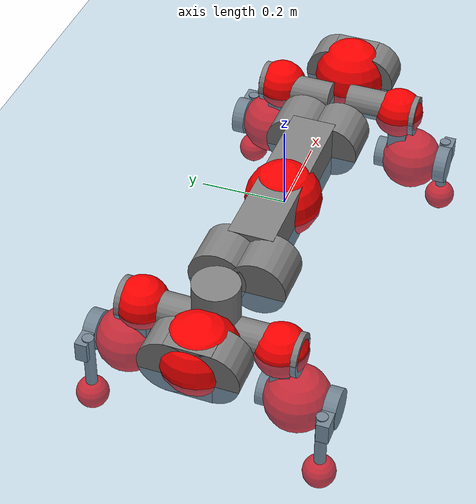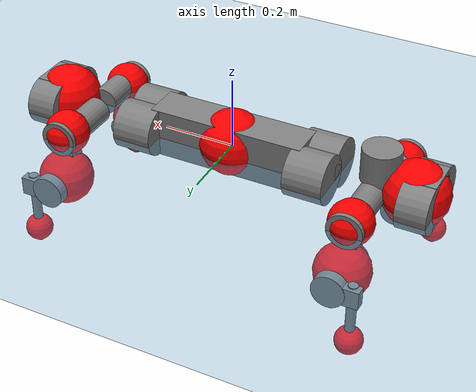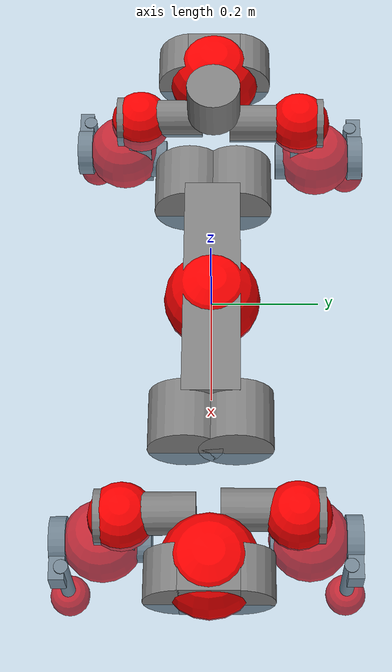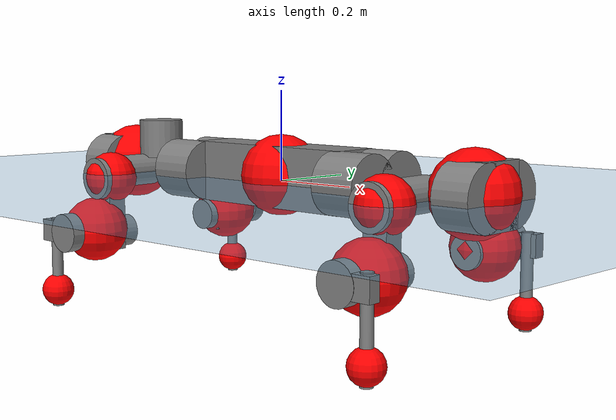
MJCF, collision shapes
<mujoco model="anymal_c">
  <compiler angle="radian" assetdir="assets" balanceinertia="true" inertiafromgeom="false"/>

  <option timestep="0.005" density="1.2" viscosity="2e-05"/>

  <size nkey="1"/>

  <visual>
    <quality shadowsize="8192"/>
    <map shadowclip="0.5"/>
  </visual>

  <default>
    <default class="/">
      <material specular="0" shininess="0.25"/>
      <geom contype="0" conaffinity="0" group="1" solref="-1000 -80"/>
      <site size="0.01 0.005 0.005" group="5"/>
      <general forcelimited="true" forcerange="-80 80" biastype="affine" gainprm="80" biasprm="0 -80 -2"/>
      <default class="anymal_c">
        <joint armature="0.01" damping="0.01" frictionloss="0.1"/>
        <default class="visual">
          <geom type="mesh" group="2"/>
          <default class="visual_zflip"/>
        </default>
        <default class="collision">
          <geom type="cylinder" group="3"/>
          <default class="foot">
            <geom size="0.03 0 0" type="sphere" condim="6" priority="1" friction="0.8 0.02 0.01" solimp="0.015 1 0.03"/>
          </default>
        </default>
      </default>
      <default class="reward_collision_sphere">
        <geom group="5" rgba="1 0 0 1"/>
      </default>
    </default>
  </default>

  <asset>
    <texture type="skybox" colorspace="auto" name="//unnamed_texture_0" builtin="gradient" rgb1="0.95 0.95 0.95" rgb2="0.95 0.95 0.95" width="100" height="600"/>
    <texture type="2d" colorspace="auto" name="texplane" builtin="checker" rgb1="0.345 0.575 0.748" rgb2="0.345 0.575 0.748" markrgb="1 1 1" width="512" height="512"/>
    <texture type="2d" colorspace="linear" name="base" file="base.png"/>
    <texture type="2d" colorspace="linear" name="top_shell" file="top_shell.png"/>
    <texture type="2d" colorspace="linear" name="bottom_shell" file="bottom_shell.png"/>
    <texture type="2d" colorspace="linear" name="remote" file="remote.png"/>
    <texture type="2d" colorspace="linear" name="hatch" file="hatch.png"/>
    <texture type="2d" colorspace="linear" name="handle" file="handle.png"/>
    <texture type="2d" colorspace="linear" name="face" file="face.png"/>
    <texture type="2d" colorspace="linear" name="battery" file="battery.png"/>
    <texture type="2d" colorspace="linear" name="lidar_cage" file="lidar_cage.png"/>
    <texture type="2d" colorspace="linear" name="depth_camera" file="depth_camera.png"/>
    <texture type="2d" colorspace="linear" name="wide_angle_camera" file="wide_angle_camera.png"/>
    <texture type="2d" colorspace="linear" name="lidar" file="lidar.png"/>
    <texture type="2d" colorspace="linear" name="drive" file="drive.png"/>
    <texture type="2d" colorspace="linear" name="hip_l" file="hip_l.png"/>
    <texture type="2d" colorspace="linear" name="shank_l" file="shank_l.png"/>
    <texture type="2d" colorspace="linear" name="foot" file="foot.png"/>
    <texture type="2d" colorspace="linear" name="thigh" file="thigh.png"/>
    <texture type="2d" colorspace="linear" name="shank_r" file="shank_r.png"/>
    <texture type="2d" colorspace="linear" name="hip_r" file="hip_r.png"/>
    <material name="MatPlane" class="/" texture="texplane" texuniform="true" texrepeat="2 2" specular="0.9" shininess="0.5"/>
    <material name="black_plastic" class="/" rgba="0.007 0.007 0.007 1"/>
    <material name="green" class="/" rgba="0.052 0.178 0.033 1"/>
    <material name="red" class="/" rgba="0.178 0.006 0.005 1"/>
    <material name="yellow" class="/" rgba="0.178 0.119 0.006 1"/>
    <material name="lwl" class="/" rgba="0.8 0.8 0.8 1"/>
    <material name="base" class="/" texture="base"/>
    <material name="top_shell" class="/" texture="top_shell"/>
    <material name="bottom_shell" class="/" texture="bottom_shell"/>
    <material name="hip_l" class="/" texture="hip_l"/>
    <material name="thigh" class="/" texture="thigh"/>
    <material name="shank_l" class="/" texture="shank_l"/>
    <material name="foot" class="/" texture="foot"/>
    <material name="hip_r" class="/" texture="hip_r"/>
    <material name="shank" class="/" texture="shank_r"/>
    <material name="hatch" class="/" texture="hatch"/>
    <material name="remote" class="/" texture="remote"/>
    <material name="handle" class="/" texture="handle"/>
    <material name="face" class="/" texture="face"/>
    <material name="depth_camera" class="/" texture="depth_camera"/>
    <material name="wide_angle_camera" class="/" texture="wide_angle_camera"/>
    <material name="battery" class="/" texture="battery"/>
    <material name="lidar_cage" class="/" texture="lidar_cage"/>
    <material name="lidar" class="/" texture="lidar"/>
    <material name="drive" class="/" texture="drive"/>
    <mesh name="base_0" class="/" file="base_0.obj"/>
    <mesh name="base_1" class="/" file="base_1.obj"/>
    <mesh name="base_2" class="/" file="base_2.obj"/>
    <mesh name="base_3" class="/" file="base_3.obj"/>
    <mesh name="base_4" class="/" file="base_4.obj"/>
    <mesh name="base_5" class="/" file="base_5.obj"/>
    <mesh name="top_shell" class="/" file="top_shell.obj"/>
    <mesh name="bottom_shell" class="/" file="bottom_shell.obj"/>
    <mesh name="remote" class="/" file="remote.obj"/>
    <mesh name="handle" class="/" file="handle.obj"/>
    <mesh name="face" class="/" file="face.obj"/>
    <mesh name="wide_angle_camera" class="/" file="wide_angle_camera.obj"/>
    <mesh name="depth_camera" class="/" file="depth_camera.obj"/>
    <mesh name="battery" class="/" file="battery.obj"/>
    <mesh name="lidar_cage" class="/" file="lidar_cage.obj"/>
    <mesh name="lidar" class="/" file="lidar.obj"/>
    <mesh name="drive" class="/" file="drive.obj"/>
    <mesh name="hip_l" class="/" file="hip_l.obj"/>
    <mesh name="thigh" class="/" file="thigh.obj"/>
    <mesh name="shank_l" class="/" file="shank_l.obj"/>
    <mesh name="foot" class="/" file="foot.obj"/>
    <mesh name="hip_r" class="/" file="hip_r.obj"/>
    <mesh name="hatch" class="/" file="hatch.obj"/>
    <mesh name="shank_r" class="/" file="shank_r.obj"/>
  </asset>

  <worldbody>
    <geom name="floor" class="/" size="100 100 0.125" type="plane" group="0" material="MatPlane"/>
    <light name="toplight_shadow" class="/" pos="0 0 5" dir="0.0990148 0.0990148 -0.990148" type="directional" ambient="0.04 0.04 0.04" diffuse="0.55 0.55 0.55" specular="0.12 0.12 0.12"/>
    <light name="toplight_fill" class="/" pos="0 0 5" dir="0.0990148 0.0990148 -0.990148" type="directional" castshadow="false" ambient="0.04 0.04 0.04" diffuse="0.3 0.3 0.3" specular="0.08 0.08 0.08"/>
    <body name="trunk" childclass="anymal_c" pos="-0.00140821 0.00123206 0.0136749" quat="0.99998 0.00502874 0.00201751 -0.00326911">
      <inertial pos="0.00216999 -0.0108346 0.0234009" quat="0.462617 0.483913 0.545773 0.50393" mass="7.53634" diaginertia="1.071 0.0599282 0.00379107"/>
      <joint name="//unnamed_joint_0" type="free" armature="0" damping="0" frictionloss="0"/>
      <geom name="//unnamed_geom_1" class="visual" material="green" mesh="base_0"/>
      <geom name="//unnamed_geom_2" class="visual" material="yellow" mesh="base_1"/>
      <geom name="//unnamed_geom_3" class="visual" material="red" mesh="base_2"/>
      <geom name="//unnamed_geom_4" class="visual" material="black_plastic" mesh="base_3"/>
      <geom name="//unnamed_geom_5" class="visual" material="lwl" mesh="base_4"/>
      <geom name="//unnamed_geom_6" class="visual" material="base" mesh="base_5"/>
      <geom name="trunk_1" class="collision" size="0.218424 0.0527229 0.0677866" type="box"/>
      <geom name="trunk_2" class="collision" size="0.0677866 0.0546059" pos="0.250116 0.0452831 0" quat="0.707107 0 0.707107 0"/>
      <geom name="trunk_3" class="collision" size="0.0677866 0.0546059" pos="-0.250116 0.0452831 0" quat="0.707107 0 0.707107 0"/>
      <geom name="trunk_4" class="collision" size="0.0677866 0.0546059" pos="0.250116 -0.0452831 0" quat="0.707107 0 0.707107 0"/>
      <geom name="trunk_5" class="collision" size="0.0677866 0.0546059" pos="-0.250116 -0.0452831 0" quat="0.707107 0 0.707107 0"/>
      <geom name="//unnamed_geom_12" class="visual" material="top_shell" mesh="top_shell"/>
      <geom name="//unnamed_geom_13" class="visual" material="bottom_shell" mesh="bottom_shell"/>
      <geom name="//unnamed_geom_14" class="visual" material="remote" mesh="remote"/>
      <geom name="//unnamed_geom_15" class="visual" material="handle" mesh="handle"/>
      <geom name="//unnamed_geom_16" class="visual" pos="0.476658 0 0" quat="1 0 0 0" material="face" mesh="face"/>
      <geom name="trunk_6" class="collision" size="0.0414252 0.0527229 0.0677866" pos="0.539906 0 0" type="box"/>
      <geom name="//unnamed_geom_18" class="collision" size="0.0677866 0.0414252" pos="0.539906 0.0452831 0" quat="0.707107 0 0.707107 0"/>
      <geom name="//unnamed_geom_19" class="collision" size="0.0677866 0.0414252" pos="0.539906 -0.0452831 0" quat="0.707107 0 0.707107 0"/>
      <geom name="//unnamed_geom_20" class="visual" pos="0.530851 0 -0.00828739" quat="0.965926 0 0.258819 0" material="depth_camera" mesh="depth_camera"/>
      <geom name="//unnamed_geom_21" class="visual" pos="0.58993 0 0.00692651" material="wide_angle_camera" mesh="wide_angle_camera"/>
      <geom name="//unnamed_geom_22" class="visual_zflip" pos="-0.476658 0 0" quat="0 0 0 1" material="face" mesh="face"/>
      <geom name="trunk_7" class="collision" size="0.0414252 0.0527229 0.0677866" pos="-0.539906 0 0" quat="0 0 0 1" type="box"/>
      <geom name="//unnamed_geom_24" class="collision" size="0.0677866 0.0414252" pos="-0.539906 -0.0452831 0" quat="0 -0.707107 0 0.707107"/>
      <geom name="//unnamed_geom_25" class="collision" size="0.0677866 0.0414252" pos="-0.539906 0.0452831 0" quat="0 -0.707107 0 0.707107"/>
      <geom name="//unnamed_geom_26" class="visual" pos="-0.530851 0 -0.00828739" quat="0 -0.258819 0 0.965926" material="depth_camera" mesh="depth_camera"/>
      <geom name="//unnamed_geom_27" class="visual_zflip" pos="-0.58993 0 0.00692651" quat="0 0 0 1" material="wide_angle_camera" mesh="wide_angle_camera"/>
      <geom name="//unnamed_geom_28" class="visual" material="battery" mesh="battery"/>
      <geom name="//unnamed_geom_29" class="visual" pos="0 0.0428324 0.0186645" quat="0.683013 -0.183013 0.183013 0.683013" material="depth_camera" mesh="depth_camera"/>
      <geom name="//unnamed_geom_30" class="visual" pos="0 -0.0428324 0.0186645" quat="0.683013 0.183013 0.183013 -0.683013" material="depth_camera" mesh="depth_camera"/>
      <geom name="//unnamed_geom_31" class="visual" pos="-0.418585 0 0.0340079" quat="1 0 0 0" material="lidar_cage" mesh="lidar_cage"/>
      <geom name="trunk_8" class="collision" size="0.0527229 0.0451911" pos="-0.418585 0 0.0617695"/>
      <geom name="//unnamed_geom_33" class="visual" pos="-0.418585 -0.000197638 0.0657949" quat="0.707107 0 0 -0.707107" material="lidar" mesh="lidar"/>
      <geom name="//unnamed_geom_34" class="visual" pos="0.344873 0.0672123 3.17762e-09" quat="0.258819 0.965926 0 0" material="drive" mesh="drive"/>
      <geom name="//unnamed_geom_35" class="visual" pos="0.344873 -0.0672123 -3.17762e-09" quat="0.258819 -0.965926 0 0" material="drive" mesh="drive"/>
      <geom name="//unnamed_geom_36" class="visual" pos="-0.344873 0.0672123 -3.17762e-09" quat="0 0 0.965926 -0.258819" material="drive" mesh="drive"/>
      <geom name="//unnamed_geom_37" class="visual" pos="-0.344873 -0.0672123 3.17762e-09" quat="0 0 -0.965926 -0.258819" material="drive" mesh="drive"/>
      <geom name="//unnamed_geom_38" class="visual" pos="0.133395 0 0.0337766" quat="1 0 0 0" material="hatch" mesh="hatch"/>
      <geom name="//unnamed_geom_39" class="reward_collision_sphere" size="0.0903822"/>
      <geom name="//unnamed_geom_40" class="reward_collision_sphere" size="0.0903822" pos="0.517482 0 0"/>
      <geom name="//unnamed_geom_41" class="reward_collision_sphere" size="0.0903822" pos="-0.517482 0 0"/>
      <site name="imu" pos="0.273634 -0.033333 0.0726471" size="0.00753185"/>
      <camera name="track" pos="0 -1.2938 0" quat="0.707107 0.707107 0 0" mode="trackcom"/>
      <camera name="ego_camera" pos="0.517482 0 -0.0185077" quat="-0.5 -0.5 0.5 0.5"/>
      <body name="LF_HIP" pos="0.344391 0.0626058 -0.00579218" quat="0.258816 0.965927 -7.72696e-06 -6.74751e-06">
        <inertial pos="0.0772794 -0.00809308 0.00937694" quat="-0.105783 0.666354 -0.136546 0.725353" mass="1.28535" diaginertia="0.011342 0.000640256 7.62796e-05"/>
        <joint name="LF_HAA" pos="0 0 0" axis="0.998359 -0.0572253 -0.00215089" stiffness="0.0474972" range="-0.742942 0.346586" armature="0.00756105" damping="0.0556035" frictionloss="0.0486252"/>
        <geom name="//unnamed_geom_42" class="visual" pos="0 0.000186925 -3.07023e-05" quat="0.258819 -0.965926 0 0" material="hip_l" mesh="hip_l"/>
        <geom name="//unnamed_geom_43" class="visual" pos="0.0688826 -0.076777 -0.0429647" quat="0.183013 -0.683013 0.683013 0.183013" material="drive" mesh="drive"/>
        <geom name="//unnamed_geom_44" class="collision" size="0.0376592 0.0527229" pos="0.0688826 -0.00773681 -0.00319489" quat="-0.353553 -0.612372 0.612372 -0.353553"/>
        <body name="LF_THIGH" pos="0.0794564 -0.0533555 -0.0303292" quat="0.182734 -0.682705 0.683361 0.183137">
          <inertial pos="0.0356627 0.00137497 -0.113538" quat="0.994038 -0.00615043 -0.0882391 0.0637466" mass="1.44288" diaginertia="0.0672506 0.00385655 0.000115033"/>
          <joint name="LF_HFE" pos="0 0 0" axis="0.999998 0.000219395 0.00196836" stiffness="0.0240446" range="-2.99253 3.13097" armature="0.0106394" damping="0" frictionloss="0.0769053"/>
          <geom name="//unnamed_geom_45" class="visual" pos="0.0100089 1.57717e-05 0" quat="0.707107 0 0 -0.707107" material="thigh" mesh="thigh"/>
          <geom name="//unnamed_geom_46" class="collision" size="0.048957 0.0301274" pos="0.0459984 0 0" quat="0.5 0.5 -0.5 -0.5"/>
          <geom name="//unnamed_geom_47" class="collision" size="0.0282444 0.0225955 0.106436" pos="0.0344988 0 -0.0653849" quat="0.707107 0 0 -0.707107" type="box"/>
          <geom name="//unnamed_geom_48" class="visual" pos="0.115341 0 -0.131867" quat="1 0 0 0" material="drive" mesh="drive"/>
          <geom name="//unnamed_geom_49" class="collision" size="0.0376592 0.0527229" pos="0.0348438 0 -0.131867" quat="0.707107 0 0.707107 0"/>
          <geom name="//unnamed_geom_50" class="reward_collision_sphere" size="0.0602548" pos="0.028749 0 0"/>
          <body name="LF_SHANK" pos="0.111826 0.00126056 -0.12788" quat="1 0.000330056 8.38485e-05 0.000365216">
            <inertial pos="0.0211154 -0.026631 -0.0358576" quat="0.992918 -0.116047 -0.000626097 -0.0254285" mass="0.253833" diaginertia="0.0235042 0.00103031 2.32746e-05"/>
            <joint name="LF_KFE" pos="0 0 0" axis="0.999999 0.000134917 0.00168971" stiffness="0.00392313" range="-2.84847 2.98522" armature="0.00934806" damping="0.0230274" frictionloss="0.0223219"/>
            <geom name="//unnamed_geom_51" class="visual" pos="0.00326368 0.0174021 0" quat="0.707107 0 0 -0.707107" material="shank_l" mesh="shank_l"/>
            <geom name="LF_kfe_act" class="collision" size="0.0451911 0.0150637" pos="0.0229992 0 0" quat="0.5 0.5 -0.5 -0.5"/>
            <geom name="//unnamed_geom_53" class="collision" size="0.0433074 0.02542 0.0143105" pos="0.0229992 -0.0371962 0" quat="0.5 0.5 -0.5 -0.5" type="box"/>
            <geom name="//unnamed_geom_54" class="visual" pos="0.0150062 -0.051287 -0.156376" quat="0.382683 0 0 -0.92388" material="foot" mesh="foot"/>
            <geom name="LF_calf" class="collision" size="0.0131807 0.106389" pos="0.015007 -0.056895 -0.0781881" quat="0.707107 0 0 -0.707107"/>
            <geom name="LF_foot" class="foot" size="0.0295447" pos="0.015007 -0.056895 -0.145966" quat="0.707107 0 0 -0.707107"/>
            <geom name="//unnamed_geom_57" class="reward_collision_sphere" size="0.0753185" pos="-0.057498 0 0"/>
            <geom name="//unnamed_geom_58" class="reward_collision_sphere" size="0.0376592" pos="0.015007 -0.056895 -0.145966"/>
            <site name="LF_foot" class="foot" pos="0.015007 -0.056895 -0.145966" quat="0.707107 0 0 -0.707107" size="0.00753185"/>
          </body>
        </body>
      </body>
      <body name="RF_HIP" pos="0.352332 -0.0697799 -0.00366923" quat="0.259051 -0.965838 -0.00488476 0.00504716">
        <inertial pos="0.070662 0.0110546 -0.00614852" quat="0.185545 0.646065 0.10217 0.733304" mass="1.03421" diaginertia="0.0120605 0.000581912 7.19905e-05"/>
        <joint name="RF_HAA" pos="0 0 0" axis="0.999337 0.0175684 -0.031881" stiffness="0.0546686" range="-0.218954 0.862107" armature="0.00639531" damping="0.049792" frictionloss="0.043245"/>
        <geom name="//unnamed_geom_59" class="visual" pos="0 -0.000186924 -3.07022e-05" quat="0.258819 0.965926 0 0" material="hip_r" mesh="hip_r"/>
        <geom name="//unnamed_geom_60" class="visual" pos="0.0688826 0.076777 -0.0429647" quat="0.183013 0.683013 0.683013 -0.183013" material="drive" mesh="drive"/>
        <geom name="//unnamed_geom_61" class="collision" size="0.0376592 0.0527229" pos="0.0688826 0.00773681 -0.00319489" quat="-0.353553 0.612372 0.612372 0.353553"/>
        <body name="RF_THIGH" pos="0.0698914 0.0547058 -0.0188858" quat="0.182421 0.685163 0.680981 -0.183138">
          <inertial pos="0.0419362 0.000827238 -0.109181" quat="0.992766 -0.012125 -0.0927389 0.0752927" mass="1.13227" diaginertia="0.0602745 0.00378842 8.10497e-05"/>
          <joint name="RF_HFE" pos="0 0 0" axis="0.999999 -0.000996901 8.52915e-05" range="-3.11263 3.29193" armature="0.010108" damping="0.0766448" frictionloss="0.114404"/>
          <geom name="//unnamed_geom_62" class="visual" pos="0.0100089 1.57717e-05 0" quat="0.707107 0 0 -0.707107" material="thigh" mesh="thigh"/>
          <geom name="//unnamed_geom_63" class="collision" size="0.048957 0.0301274" pos="0.0459984 0 0" quat="0.5 0.5 0.5 0.5"/>
          <geom name="//unnamed_geom_64" class="collision" size="0.0282444 0.0225955 0.106436" pos="0.0344988 0 -0.0653849" quat="0.707107 0 0 0.707107" type="box"/>
          <geom name="//unnamed_geom_65" class="visual" pos="0.115341 0 -0.131867" quat="1 0 0 0" material="drive" mesh="drive"/>
          <geom name="//unnamed_geom_66" class="collision" size="0.0376592 0.0527229" pos="0.0348438 0 -0.131867" quat="0.707107 0 0.707107 0"/>
          <geom name="//unnamed_geom_67" class="reward_collision_sphere" size="0.0602548" pos="0.028749 0 0"/>
          <body name="RF_SHANK" pos="0.128768 -0.00220755 -0.130596" quat="0.999999 0.00101686 0.000540866 -0.000805275">
            <inertial pos="0.00985037 0.0519462 -0.0477566" quat="0.983839 0.178385 -0.0140382 -0.00650068" mass="0.297686" diaginertia="0.0236805 0.00103282 3.0291e-05"/>
            <joint name="RF_KFE" pos="0 0 0" axis="0.999982 -0.00533357 -0.00271893" stiffness="0.0141731" range="-3.13848 3.16759" armature="0.0076174" damping="0.0510432" frictionloss="0.1003"/>
            <geom name="//unnamed_geom_68" class="visual" pos="0.00326366 -0.0174021 0" quat="0.707107 0 0 0.707107" material="shank" mesh="shank_r"/>
            <geom name="RF_kfe_act" class="collision" size="0.0451911 0.0150637" pos="0.0229992 0 0" quat="0.5 0.5 0.5 0.5"/>
            <geom name="//unnamed_geom_70" class="collision" size="0.0433074 0.02542 0.0143105" pos="0.0229992 0.0371962 0" quat="0.5 0.5 0.5 0.5" type="box"/>
            <geom name="//unnamed_geom_71" class="visual" pos="0.0150078 0.051287 -0.156376" quat="0.382683 0 0 0.92388" material="foot" mesh="foot"/>
            <geom name="RF_calf" class="collision" size="0.0131807 0.106389" pos="0.015007 0.056895 -0.0781881" quat="0.707107 0 0 0.707107"/>
            <geom name="RF_foot" class="foot" size="0.0327802" pos="0.015007 0.056895 -0.145966" quat="0.707107 0 0 0.707107"/>
            <geom name="//unnamed_geom_74" class="reward_collision_sphere" size="0.0753185" pos="-0.057498 0 0"/>
            <geom name="//unnamed_geom_75" class="reward_collision_sphere" size="0.0376592" pos="0.015007 0.056895 -0.145966"/>
            <site name="RF_foot" class="foot" pos="0.015007 0.056895 -0.145966" quat="0.707107 0 0 0.707107" size="0.00753185"/>
          </body>
        </body>
      </body>
      <body name="LH_HIP" pos="-0.344985 0.0762517 -0.00923734" quat="0.00202261 0.000719598 0.965974 -0.258632">
        <inertial pos="0.0695291 0.0220234 0.00991066" quat="0.134934 0.662042 0.117026 0.727872" mass="1.32018" diaginertia="0.0139729 0.000569019 8.61491e-05"/>
        <joint name="LH_HAA" pos="0 0 0" axis="0.998355 -0.0262795 -0.0509491" range="-0.258375 0.471569" armature="0.00323143" damping="0.0170598" frictionloss="0.070607"/>
        <geom name="//unnamed_geom_76" class="visual" pos="0 -0.000186924 -3.07022e-05" quat="-0.258819 -0.965926 0 0" material="hip_r" mesh="hip_r"/>
        <geom name="//unnamed_geom_77" class="visual" pos="0.0688826 0.076777 -0.0429647" quat="0.183013 0.683013 0.683013 -0.183013" material="drive" mesh="drive"/>
        <geom name="//unnamed_geom_78" class="collision" size="0.0376592 0.0527229" pos="0.0688826 0.00773681 -0.00319489" quat="-0.353553 0.612372 0.612372 0.353553"/>
        <body name="LH_THIGH" pos="0.0688544 0.0583895 -0.0326985" quat="0.185057 0.680692 0.683815 -0.186571">
          <inertial pos="0.0209934 0.00961695 -0.0993997" quat="0.992987 -0.00423964 -0.0795028 0.087394" mass="1.06666" diaginertia="0.0416376 0.00269578 6.4033e-05"/>
          <joint name="LH_HFE" pos="0 0 0" axis="0.997441 0.0697819 0.0155225" range="-2.97107 3.13874" armature="0.00696355" damping="0.0778919" frictionloss="0.0520901"/>
          <geom name="//unnamed_geom_79" class="visual" pos="0.0100089 1.57717e-05 0" quat="0.707107 0 0 -0.707107" material="thigh" mesh="thigh"/>
          <geom name="//unnamed_geom_80" class="collision" size="0.048957 0.0301274" pos="0.0459984 0 0" quat="0.5 0.5 -0.5 -0.5"/>
          <geom name="//unnamed_geom_81" class="collision" size="0.0282444 0.0225955 0.106436" pos="0.0344988 0 -0.0653849" quat="0.707107 0 0 -0.707107" type="box"/>
          <geom name="//unnamed_geom_82" class="visual" pos="0.115341 0 -0.131867" quat="1 0 0 0" material="drive" mesh="drive"/>
          <geom name="//unnamed_geom_83" class="collision" size="0.0376592 0.0527229" pos="0.0348438 0 -0.131867" quat="0.707107 0 0.707107 0"/>
          <geom name="//unnamed_geom_84" class="reward_collision_sphere" size="0.0602548" pos="0.028749 0 0"/>
          <body name="LH_SHANK" pos="0.123296 0.00121702 -0.123652" quat="0.999987 0.000860142 -0.00385022 0.00330151">
            <inertial pos="0.0196014 0.0305186 -0.0233871" quat="0.991206 0.102018 -0.0180753 0.0823155" mass="0.280861" diaginertia="0.0231566 0.00126986 2.45706e-05"/>
            <joint name="LH_KFE" pos="0 0 0" axis="1 -0.000193387 0.000102429" stiffness="0.0102348" range="-3.18307 3.43584" armature="0.00315821" damping="0.0733398" frictionloss="0.0704783"/>
            <geom name="//unnamed_geom_85" class="visual" pos="0.00326366 -0.0174021 0" quat="-0.707107 0 0 -0.707107" material="shank" mesh="shank_r"/>
            <geom name="LH_kfe_act" class="collision" size="0.0451911 0.0150637" pos="0.0229992 0 0" quat="0.5 0.5 -0.5 -0.5"/>
            <geom name="//unnamed_geom_87" class="collision" size="0.0433074 0.02542 0.0143105" pos="0.0229992 0.0371962 0" quat="0.5 0.5 -0.5 -0.5" type="box"/>
            <geom name="//unnamed_geom_88" class="visual" pos="0.0150078 0.051287 -0.156376" quat="-0.382683 0 0 -0.92388" material="foot" mesh="foot"/>
            <geom name="LH_calf" class="collision" size="0.0131807 0.106389" pos="0.015007 0.056895 -0.0781881" quat="0.707107 0 0 -0.707107"/>
            <geom name="LH_foot" class="foot" size="0.0182021" pos="0.015007 0.056895 -0.145966" quat="0.707107 0 0 -0.707107"/>
            <geom name="//unnamed_geom_91" class="reward_collision_sphere" size="0.0753185" pos="-0.057498 0 0"/>
            <geom name="//unnamed_geom_92" class="reward_collision_sphere" size="0.0376592" pos="0.015007 0.056895 -0.145966"/>
            <site name="LH_foot" class="foot" pos="0.015007 0.056895 -0.145966" quat="0.707107 0 0 -0.707107" size="0.00753185"/>
          </body>
        </body>
      </body>
      <body name="RH_HIP" pos="-0.359508 -0.0677511 -0.0119784" quat="0.00084077 0.00137383 -0.965964 -0.25867">
        <inertial pos="0.0757956 -0.00194507 -0.00475848" quat="-0.0865537 0.690375 -0.173111 0.697082" mass="1.16859" diaginertia="0.00818263 0.000465859 5.26968e-05"/>
        <joint name="RH_HAA" pos="0 0 0" axis="0.997274 -0.0515323 -0.0528074" range="-0.593923 0.489951" armature="0.0074394" damping="0.0235311" frictionloss="0.0205438"/>
        <geom name="//unnamed_geom_93" class="visual" pos="0 0.000186925 -3.07023e-05" quat="-0.258819 0.965926 0 0" material="hip_l" mesh="hip_l"/>
        <geom name="//unnamed_geom_94" class="visual" pos="0.0688826 -0.076777 -0.0429647" quat="-0.183013 0.683013 -0.683013 -0.183013" material="drive" mesh="drive"/>
        <geom name="//unnamed_geom_95" class="collision" size="0.0376592 0.0527229" pos="0.0688826 -0.00773681 -0.00319489" quat="0.353553 0.612372 -0.612372 0.353553"/>
        <body name="RH_THIGH" pos="0.0702034 -0.0510954 -0.0136988" quat="-0.1825 0.683284 -0.682808 -0.183274">
          <inertial pos="0.0296633 0.00715785 -0.101708" quat="0.987795 -0.00279958 -0.121819 0.0970251" mass="1.62879" diaginertia="0.0549467 0.00352032 8.97858e-05"/>
          <joint name="RH_HFE" pos="0 0 0" axis="0.999555 -0.0245765 -0.0168971" range="-3.11506 3.34302" armature="0.00838763" damping="0.0278581" frictionloss="0.0889639"/>
          <geom name="//unnamed_geom_96" class="visual" pos="0.0100089 1.57717e-05 0" quat="0.707107 0 0 -0.707107" material="thigh" mesh="thigh"/>
          <geom name="//unnamed_geom_97" class="collision" size="0.048957 0.0301274" pos="0.0459984 0 0" quat="0.5 0.5 0.5 0.5"/>
          <geom name="//unnamed_geom_98" class="collision" size="0.0282444 0.0225955 0.106436" pos="0.0344988 0 -0.0653849" quat="0.707107 0 0 0.707107" type="box"/>
          <geom name="//unnamed_geom_99" class="visual" pos="0.115341 0 -0.131867" quat="1 0 0 0" material="drive" mesh="drive"/>
          <geom name="//unnamed_geom_100" class="collision" size="0.0376592 0.0527229" pos="0.0348438 0 -0.131867" quat="0.707107 0 0.707107 0"/>
          <geom name="//unnamed_geom_101" class="reward_collision_sphere" size="0.0602548" pos="0.028749 0 0"/>
          <body name="RH_SHANK" pos="0.128108 -0.009976 -0.122242" quat="0.999973 -0.0073797 0.000727351 -3.39088e-05">
            <inertial pos="0.00184567 -0.0394478 -0.0367822" quat="0.997688 -0.065917 -0.0144491 0.00805971" mass="0.233405" diaginertia="0.018855 0.000858269 2.47489e-05"/>
            <joint name="RH_KFE" pos="0 0 0" axis="0.9975 -0.0518788 0.047977" stiffness="0.0636607" range="-3.37102 3.20909" armature="0.00793286" damping="0.067143" frictionloss="0.089512"/>
            <geom name="//unnamed_geom_102" class="visual" pos="0.00326368 0.0174021 0" quat="0.707107 0 0 -0.707107" material="shank_l" mesh="shank_l"/>
            <geom name="RH_kfe_act" class="collision" size="0.0451911 0.0150637" pos="0.0229992 0 0" quat="0.5 0.5 0.5 0.5"/>
            <geom name="//unnamed_geom_104" class="collision" size="0.0433074 0.02542 0.0143105" pos="0.0229992 -0.0371962 0" quat="0.5 0.5 0.5 0.5" type="box"/>
            <geom name="//unnamed_geom_105" class="visual" pos="0.0150062 -0.051287 -0.156376" quat="0.382683 0 0 -0.92388" material="foot" mesh="foot"/>
            <geom name="RH_calf" class="collision" size="0.0131807 0.106389" pos="0.015007 -0.056895 -0.0781881" quat="0.707107 0 0 0.707107"/>
            <geom name="RH_foot" class="foot" size="0.0257214" pos="0.015007 -0.056895 -0.145966" quat="0.707107 0 0 0.707107"/>
            <geom name="//unnamed_geom_108" class="reward_collision_sphere" size="0.0753185" pos="-0.057498 0 0"/>
            <geom name="//unnamed_geom_109" class="reward_collision_sphere" size="0.0376592" pos="0.015007 -0.056895 -0.145966"/>
            <site name="RH_foot" class="foot" pos="0.015007 -0.056895 -0.145966" quat="0.707107 0 0 0.707107" size="0.00753185"/>
          </body>
        </body>
      </body>
    </body>
  </worldbody>

  <contact>
    <pair class="/" geom1="floor" geom2="LF_foot" name="//unnamed_contact_0"/>
    <pair class="/" geom1="floor" geom2="RF_foot" name="//unnamed_contact_1"/>
    <pair class="/" geom1="floor" geom2="LH_foot" name="//unnamed_contact_2"/>
    <pair class="/" geom1="floor" geom2="RH_foot" name="//unnamed_contact_3"/>
  </contact>

  <actuator>
    <general name="LF_HAA" class="/" joint="LF_HAA" forcerange="-58.8212 58.8212" gainprm="56.2845" biasprm="0 -56.2845 -1.77551"/>
    <general name="LF_HFE" class="/" joint="LF_HFE" forcerange="-54.9963 54.9963" gainprm="56.2845" biasprm="0 -56.2845 -1.77551"/>
    <general name="LF_KFE" class="/" joint="LF_KFE" forcerange="-43.1966 43.1966" gainprm="56.2845" biasprm="0 -56.2845 -1.77551"/>
    <general name="RF_HAA" class="/" joint="RF_HAA" forcerange="-64.8991 64.8991" gainprm="56.2845" biasprm="0 -56.2845 -1.77551"/>
    <general name="RF_HFE" class="/" joint="RF_HFE" forcerange="-43.8961 43.8961" gainprm="56.2845" biasprm="0 -56.2845 -1.77551"/>
    <general name="RF_KFE" class="/" joint="RF_KFE" forcerange="-57.6463 57.6463" gainprm="56.2845" biasprm="0 -56.2845 -1.77551"/>
    <general name="LH_HAA" class="/" joint="LH_HAA" forcerange="-59.6081 59.6081" gainprm="56.2845" biasprm="0 -56.2845 -1.77551"/>
    <general name="LH_HFE" class="/" joint="LH_HFE" forcerange="-90.8337 90.8337" gainprm="56.2845" biasprm="0 -56.2845 -1.77551"/>
    <general name="LH_KFE" class="/" joint="LH_KFE" forcerange="-32.8239 32.8239" gainprm="56.2845" biasprm="0 -56.2845 -1.77551"/>
    <general name="RH_HAA" class="/" joint="RH_HAA" forcerange="-60.7799 60.7799" gainprm="56.2845" biasprm="0 -56.2845 -1.77551"/>
    <general name="RH_HFE" class="/" joint="RH_HFE" forcerange="-71.2279 71.2279" gainprm="56.2845" biasprm="0 -56.2845 -1.77551"/>
    <general name="RH_KFE" class="/" joint="RH_KFE" forcerange="-42.2579 42.2579" gainprm="56.2845" biasprm="0 -56.2845 -1.77551"/>
  </actuator>

  <sensor>
    <gyro site="imu" name="imu_angular_velocity"/>
    <velocimeter site="imu" name="imu_linear_velocity"/>
    <framelinvel objtype="site" objname="LF_foot" name="LF_foot_global_linear_velocity"/>
    <framelinvel objtype="site" objname="RF_foot" name="RF_foot_global_linear_velocity"/>
    <framelinvel objtype="site" objname="LH_foot" name="LH_foot_global_linear_velocity"/>
    <framelinvel objtype="site" objname="RH_foot" name="RH_foot_global_linear_velocity"/>
  </sensor>

  <keyframe>
    <key name="home" qpos="0 0 0.55 1 0 0 0 0 0.4 -0.8 0 -0.4 0.8 0 -0.4 0.8 0 0.4 -0.8"/>
  </keyframe>
</mujoco>
